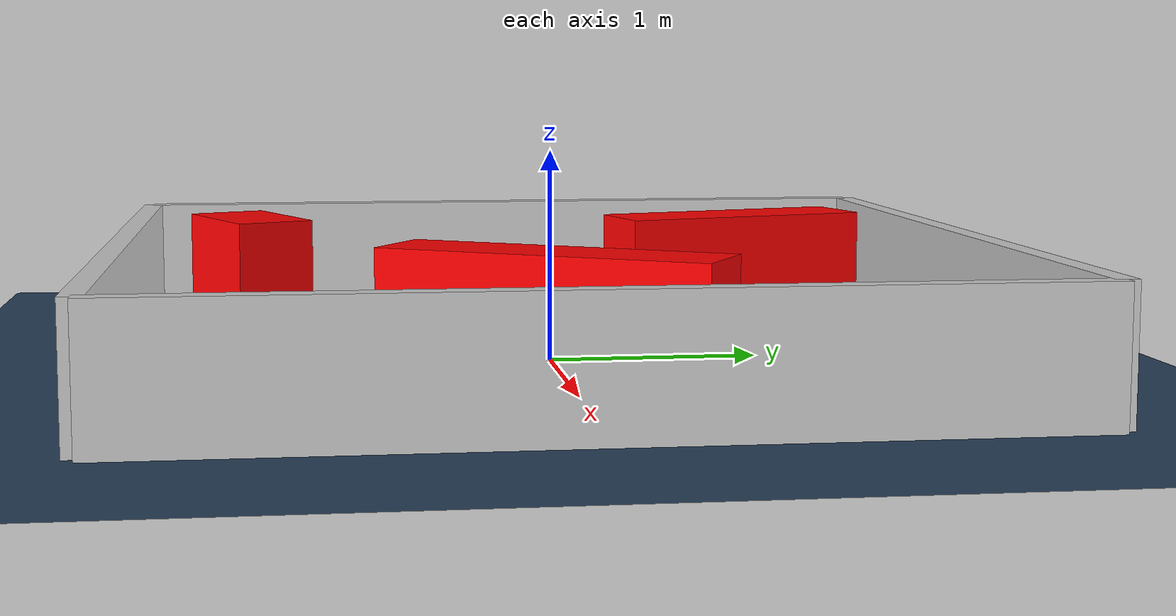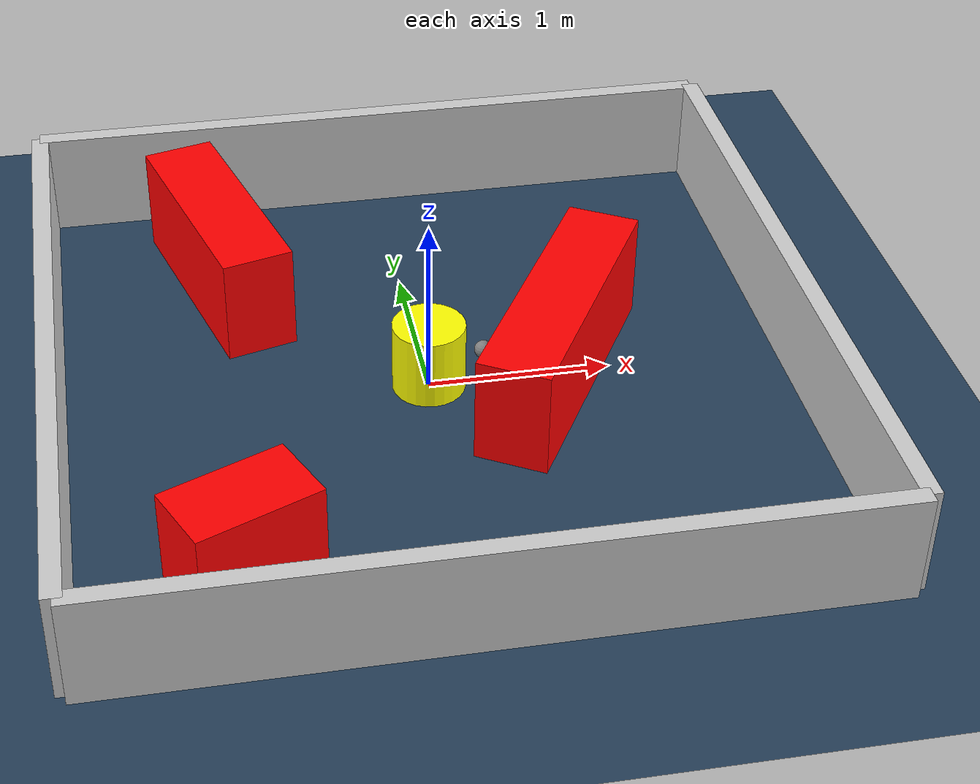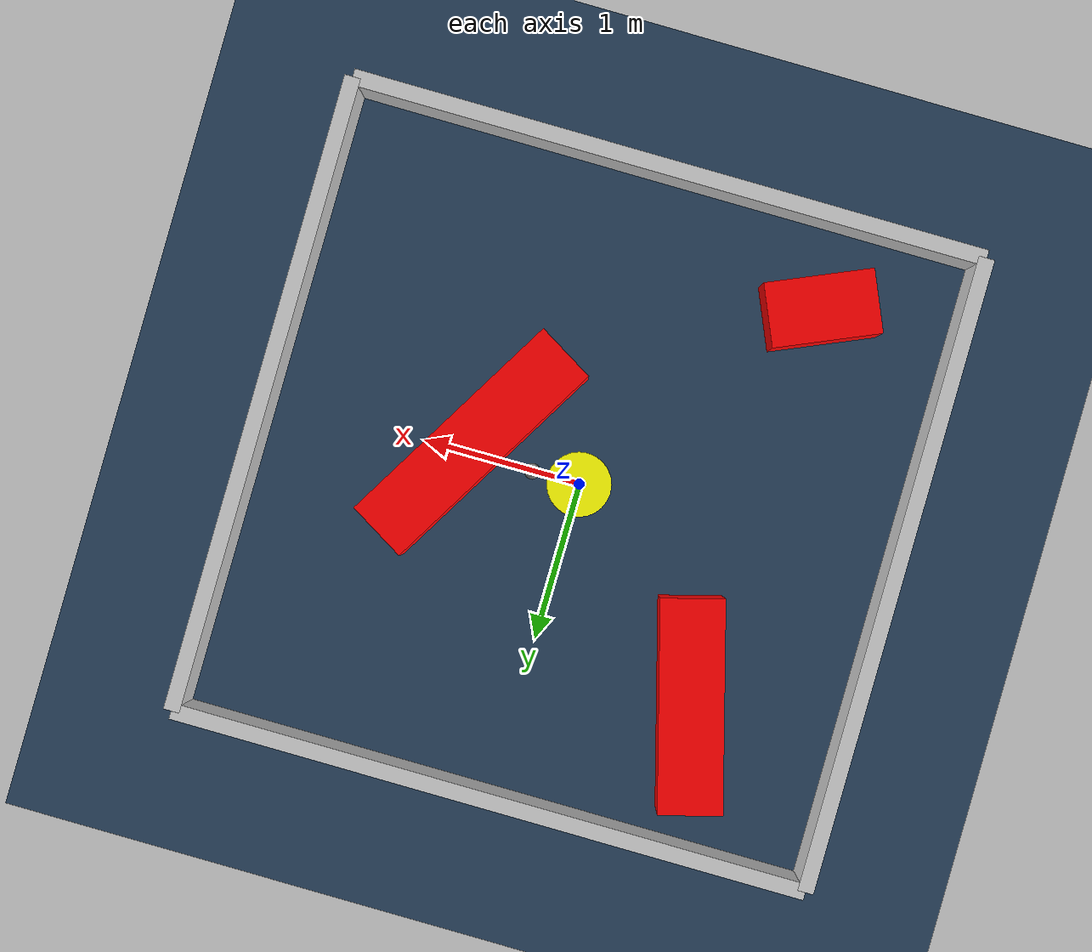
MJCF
<?xml version="1.0" ?>
<mujoco model="generated_environment">
  <option timestep="0.01" integrator="RK4" cone="elliptic"/>
  <default>
    <geom density="1"/>
  </default>
  <asset>
    <texture builtin="gradient" height="3072" rgb1="0.3 0.5 0.7" rgb2="0 0 0" type="skybox" width="512"/>
    <texture builtin="checker" height="300" mark="edge" markrgb="0.8 0.8 0.8" name="groundplane" rgb1="0.2 0.3 0.4" rgb2="0.1 0.2 0.3" type="2d" width="300"/>
    <material name="groundplane" reflectance="0.2" texrepeat="5 5" texture="groundplane" texuniform="true"/>
    <material name="robot" rgba="0.0 1.0 0.0 1"/>
  </asset>
  <worldbody>
    <light dir="0 0 -1" directional="true" pos="0 0 1.5"/>
    <geom condim="4" friction="1.0 0.005 0.001" material="groundplane" name="floor" size="0 0 0.05" type="plane"/>
    <body name="walls">
      <geom name="wall_1" condim="4" pos="-2.0 0.0 0.3" rgba="0.800000011920929 0.800000011920929 0.800000011920929 1.0" size="0.05 2.0 0.3" type="box"/>
      <geom name="wall_2" condim="4" pos="2.0 0.0 0.3" rgba="0.800000011920929 0.800000011920929 0.800000011920929 1.0" size="0.05 2.0 0.3" type="box"/>
      <geom name="wall_3" condim="4" pos="0.0 -2.0 0.3" rgba="0.800000011920929 0.800000011920929 0.800000011920929 1.0" size="2.0 0.05 0.3" type="box"/>
      <geom name="wall_4" condim="4" pos="0.0 2.0 0.3" rgba="0.800000011920929 0.800000011920929 0.800000011920929 1.0" size="2.0 0.05 0.3" type="box"/>
    </body>
    <body name="robot">
      <joint name="joint_x" type="slide" pos="0 0 0" axis="1 0 0"/>
      <joint name="joint_y" type="slide" pos="0 0 0" axis="0 1 0"/>
      <geom name="robot" type="sphere" pos="0.3 0.0 0.2" size="0.05" mass="5." friction="1.0 0.005 0.0001" condim="4" rgba="0.5 0.5 0.5 1.0"/>
      <site name="sensor_ball"/>
    </body>
    <body name="obstacle_movable_1">
      <geom name="obstacle_movable_1" condim="4" pos="0.0 0.0 0.2" euler="0 0 0.0" friction="1.0 0.005 0.001" rgba="1.0 1.0 0.0 1.0" size="0.2 0.2 0.0" type="cylinder" mass="0.1"/>
      <joint type="free"/>
    </body>
    <body name="obstacle_2_static">
      <geom name="obstacle_2_static" condim="4" pos="-1.1303125546924133 -1.4369235896702326 0.3" euler="0 0 23.534448471999596" friction="1.0 0.005 0.001" rgba="1 0 0 1" size="0.33966575305952645 0.2 0.3" type="box"/>
    </body>
    <body name="obstacle_3_static">
      <geom name="obstacle_3_static" condim="4" pos="-1.0267947194890121 1.1096178172965192 0.3" euler="0 0 285.1933860370214" friction="1.0 0.005 0.001" rgba="1 0 0 1" size="0.6590108439692357 0.2 0.3" type="box"/>
    </body>
    <body name="obstacle_4_static">
      <geom name="obstacle_4_static" condim="4" pos="0.6993645377422195 -0.0678468629980491 0.3" euler="0 0 59.33776468320492" friction="1.0 0.005 0.001" rgba="1 0 0 1" size="0.7916388788793239 0.2 0.3" type="box"/>
    </body>
  </worldbody>
  <actuator>
    <motor name="actuator_x" joint="joint_x" gear="1" ctrlrange="-1 1"/>
    <motor name="actuator_y" joint="joint_y" gear="1" ctrlrange="-1 1"/>
  </actuator>
</mujoco>
